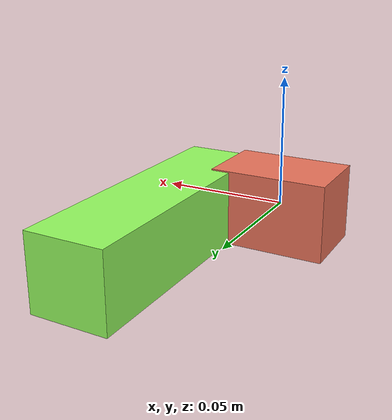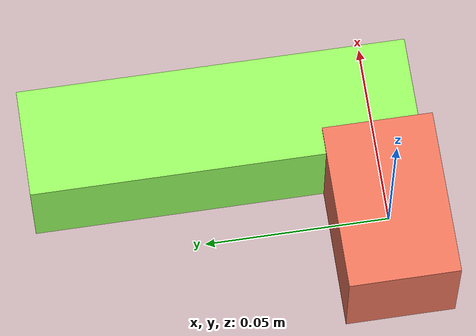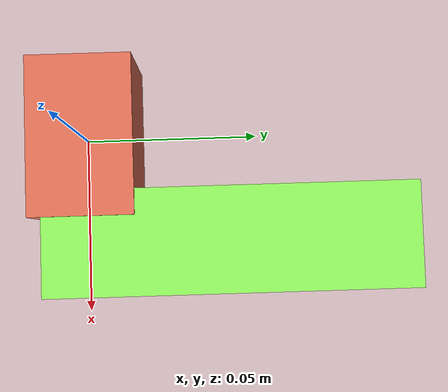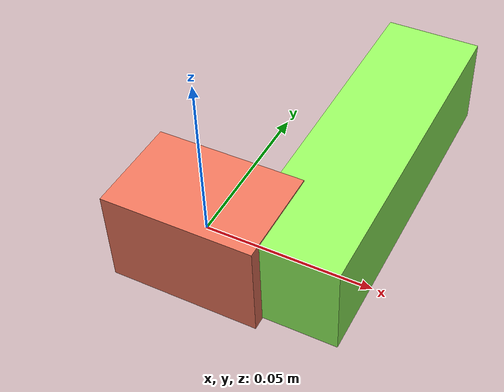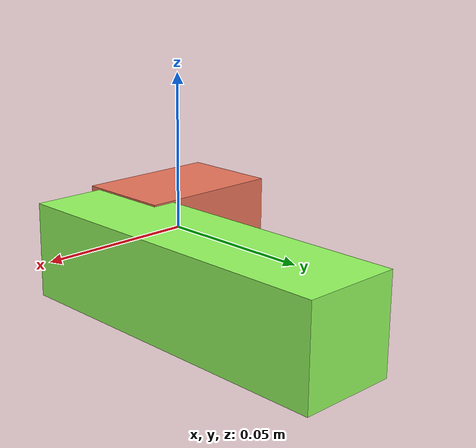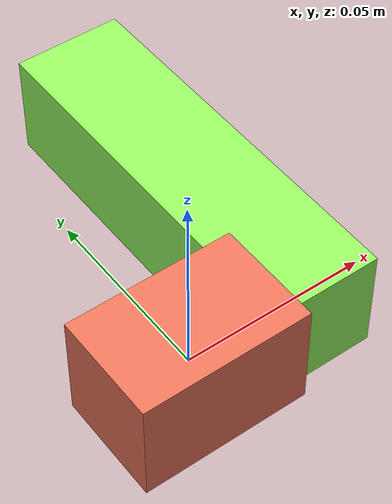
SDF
<sdf version="1.4"><world name="default"><model name="object0"><link name="link1"><pose>0 0 0 0 0 0</pose><inertial><pose>0 0 0 0 0 0</pose><mass>0.02464297373397029</mass><inertia><ixx>3.696446060095543e-06</ixx><ixy>0</ixy><iyy>6.124940657921414e-06</iyy><ixz>0</ixz><iyz>0</iyz><izz>6.124940657921414e-06</izz></inertia></inertial><visual name="link1_visual"><pose>0 0  0 0 0 0</pose><geometry><box><size>0.04563513654438943 0.03 0.03</size></box></geometry><material><diffuse>0.925839726594009 0.4578091777684993 0.35680167426911774 1</diffuse></material></visual><collision><pose>0 0  0 0 0 0</pose><geometry><box><size>0.04563513654438943 0.03 0.03</size></box></geometry></collision></link><link name="link2"><pose>0.03045554743084379 0.041789669634970814 0 0 0 0</pose><inertial><pose>0 0 0 0 0 0</pose><mass>0.0571858656953709</mass><inertia><ixx>5.7451576593143907e-05</ixx><ixy>0</ixy><iyy>8.296716014636728e-06</iyy><ixz>0</ixz><iyz>0</iyz><izz>5.7732740432812816e-05</izz></inertia></inertial><visual name="link2_visual"><pose>0 0  0 0 0 0</pose><geometry><box><size>0.03 0.1058997512877239 0.028999999999999998</size></box></geometry><material><diffuse>0.5914454963160517 0.997082578956284 0.37657938764932564 1</diffuse></material></visual><collision><pose>0 0  0 0 0 0</pose><geometry><box><size>0.03 0.1058997512877239 0.028999999999999998</size></box></geometry></collision></link><joint name="link_joint_0" type="fixed"><parent>link1</parent><child>link2</child><pose>0 0 0 0 0 0</pose><axis><xyz>0 0 1</xyz></axis></joint></model></world></sdf>
